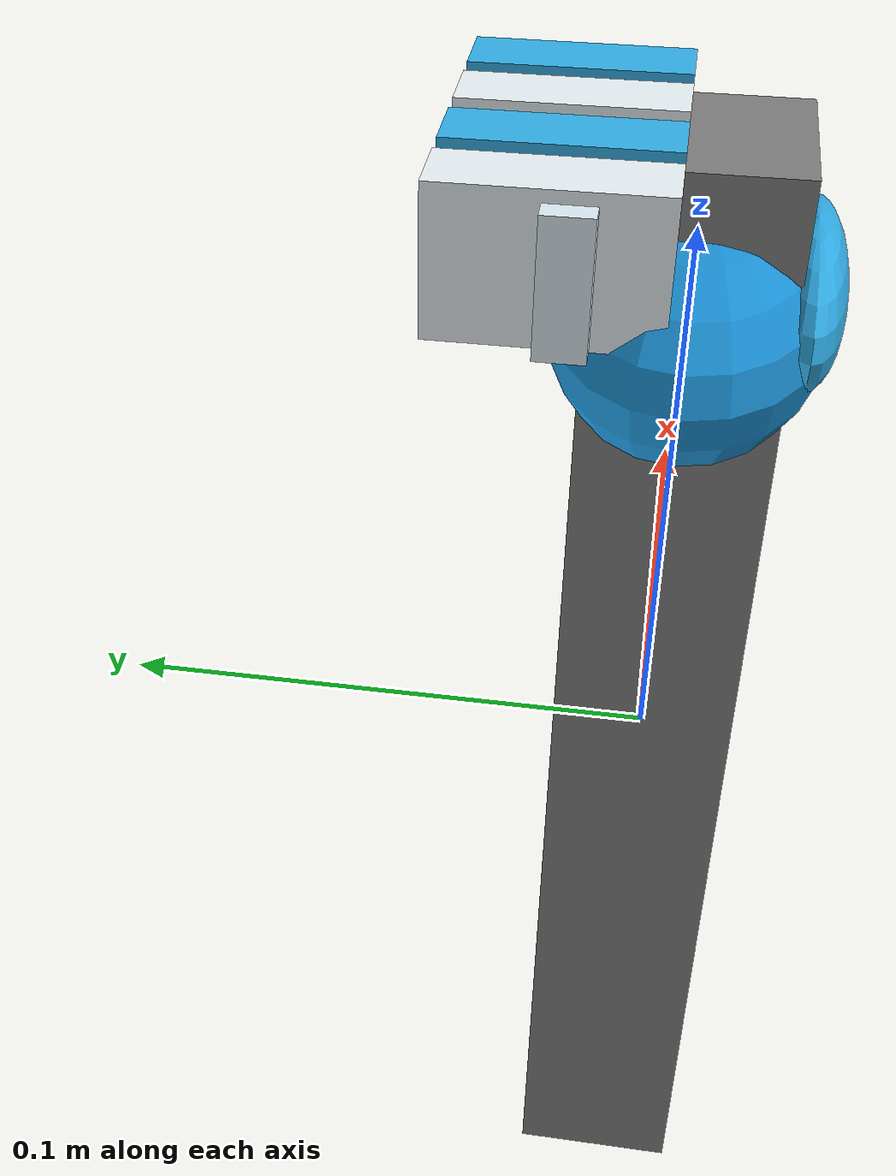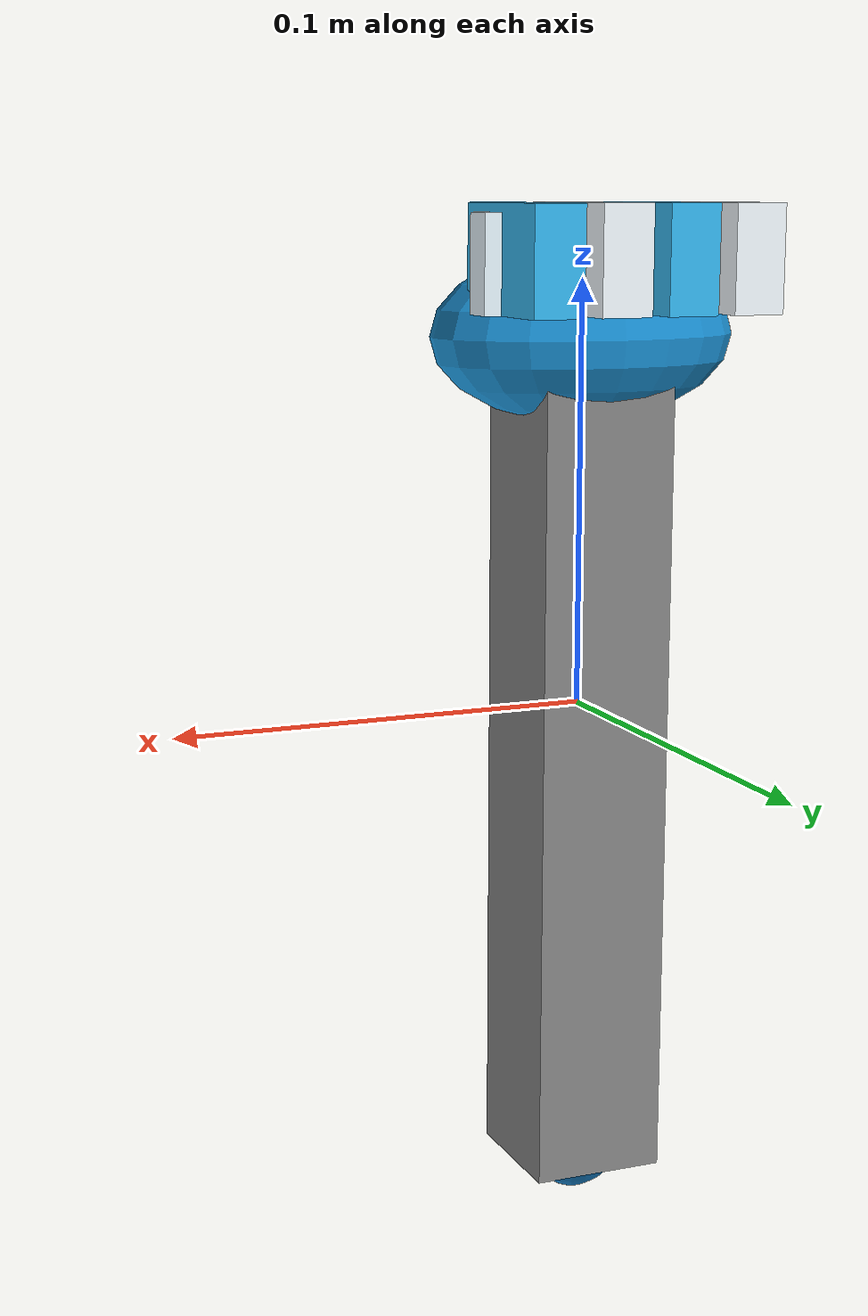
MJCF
<mujoco model="vla82_vla82_042">
  <compiler angle="radian"/>
  <asset>
    <texture name="source_texture" type="2d" file="source_texture.png"/>
    <material name="source_material" texture="source_texture" rgba="1 1 1 1"/>
  </asset>
  <default>
    <default class="visual"><geom contype="0" conaffinity="0" group="1" mass="0"/></default>
    <default class="collision"><geom contype="1" conaffinity="1" group="0" density="300" friction="0.55 0.005 0.0002" solref="0.02 1" solimp="0.9 0.95 0.001"/></default>
    <default class="region"><geom contype="0" conaffinity="0" group="1" rgba="0 1 0 0" mass="0"/></default>
  </default>
  <worldbody><body><body name="object">
    <geom name="handle_visual" class="visual" type="capsule" pos="0 0 -0.034" size="0.012 0.078" rgba="0.08 0.48 0.75 1"/>
    <geom name="brush_grip" class="visual" type="box" pos="0 -0.011 -0.038" size="0.006 0.002 0.042" rgba="0.88 0.95 0.98 1"/>
    <geom name="brush_neck" class="visual" type="cylinder" pos="0 0 0.057" size="0.010 0.025" rgba="0.10 0.53 0.80 1"/>
    <geom name="brush_head_visual" class="visual" type="ellipsoid" pos="0 0 0.087" size="0.037 0.023 0.020" rgba="0.10 0.56 0.82 1"/>
    <geom name="brush_head" class="visual" type="ellipsoid" pos="0 -0.018 0.091" size="0.025 0.006 0.012" rgba="0.18 0.66 0.88 1"/>
    <geom name="bristles_visual" class="visual" type="box" pos="0 0.018 0.104" size="0.034 0.004 0.011" rgba="0.88 0.94 0.97 1"/>
    <geom name="bristle_group_0" class="visual" type="box" pos="-0.0240 0.021 0.105" size="0.006 0.018 0.012" rgba="0.93 0.96 0.98 1"/>
    <geom name="bristle_group_1" class="visual" type="box" pos="-0.0080 0.021 0.105" size="0.006 0.018 0.012" rgba="0.20 0.70 0.92 1"/>
    <geom name="bristle_group_2" class="visual" type="box" pos="0.0080 0.021 0.105" size="0.006 0.018 0.012" rgba="0.93 0.96 0.98 1"/>
    <geom name="bristle_group_3" class="visual" type="box" pos="0.0240 0.021 0.105" size="0.006 0.018 0.012" rgba="0.20 0.70 0.92 1"/>
    <geom name="legacy_visual_mass_carrier" class="visual" type="box" size="0.016000 0.016000 0.115000" mass="0.235520000" rgba="0 0 0 0"/>
    <geom name="collision" class="collision" type="box" size="0.016000 0.016000 0.115000"/>
    <geom name="reg_bbox" class="region" type="box" pos="0 0 0" size="0.016000 0.016000 0.115000"/>
  </body></body></worldbody>
  <actuator/>
</mujoco>
